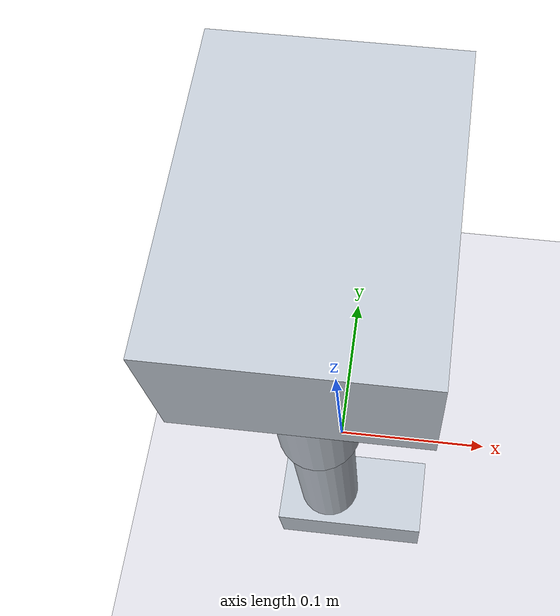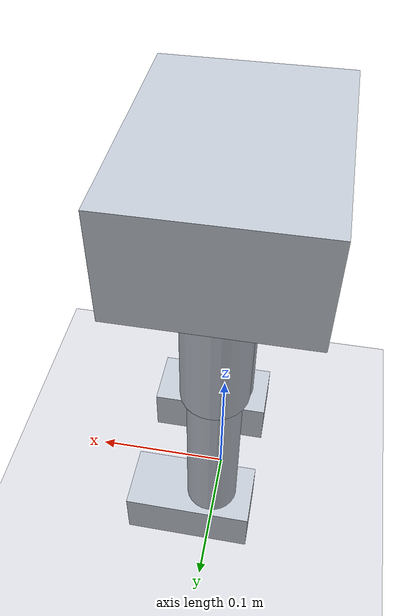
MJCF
<mujoco model="cara_lower_body_dynamic">
  <compiler angle="radian" autolimits="true"/>
  <option gravity="0 0 -9.81" timestep="0.002" integrator="implicitfast"/>

  <visual>
    <headlight diffuse="0.6 0.6 0.6" ambient="0.35 0.35 0.35" specular="0 0 0"/>
    <rgba haze="0.15 0.25 0.35 1"/>
    <global azimuth="130" elevation="-20"/>
  </visual>

  <default>
    <geom contype="0" conaffinity="0" group="2"/>   <!-- link geoms: visual only -->
    <site type="sphere" size="0.006" group="3"/>
  </default>

  <worldbody>
    <light pos="0 0 1.5" dir="0 0 -1" diffuse="0.5 0.5 0.5"/>
    <geom name="floor" type="plane" size="1.0 1.0 0.02" pos="0 0 0" contype="1" conaffinity="1" condim="3" friction="1 0.005 0.0001" rgba="0.85 0.85 0.88 1" group="1"/>

    <body name="pelvis" pos="0 0 0.276801">
      <freejoint name="pelvis_free"/>
      <inertial pos="0 0 -0.01" mass="1.1" diaginertia="0.00279583333 0.00176916667 0.00366666667"/>
      <geom type="box" size="0.06 0.08 0.035" pos="0 0 -0.01" rgba="0.75 0.78 0.82 1"/>
      <site name="pelvis_frame" pos="0 0 0" rgba="0.9 0.5 0.2 1"/>
      <body name="l_thigh" pos="0 0.05 0">
        <joint name="l_hip_yaw" type="hinge" pos="0 0 0" axis="0 0 1" range="-0.79 0.79"/>
        <joint name="l_hip_roll" type="hinge" pos="0 0 0" axis="1 0 0" range="-0.52 0.61"/>
        <joint name="l_hip_pitch" type="hinge" pos="0 0 0" axis="0 1 0" range="-1.75 1.05"/>
        <inertial pos="0 0 -0.066" mass="0.22" diaginertia="0.000264 0.000264 5.324e-05"/>
        <geom type="cylinder" size="0.022 0.06" pos="0 0 -0.066" rgba="0.75 0.78 0.82 1"/>
        <site name="l_thigh_frame" pos="0 0 0" rgba="0.9 0.5 0.2 1"/>
        <body name="l_shin" pos="0 0 -0.12">
          <joint name="l_knee_pitch" type="hinge" pos="0 0 0" axis="0 1 0" range="0 2.36"/>
          <inertial pos="0 0 -0.0696" mass="0.18" diaginertia="0.000216 0.000216 2.916e-05"/>
          <geom type="cylinder" size="0.018 0.06" pos="0 0 -0.0696" rgba="0.75 0.78 0.82 1"/>
          <site name="l_shin_frame" pos="0 0 0" rgba="0.9 0.5 0.2 1"/>
          <body name="l_foot" pos="0 0 -0.12">
            <joint name="l_ankle_pitch" type="hinge" pos="0 0 0" axis="0 1 0" range="-0.87 0.61"/>
            <joint name="l_ankle_roll" type="hinge" pos="0 0 0" axis="1 0 0" range="-0.44 0.44"/>
            <inertial pos="0.015 0 -0.0175" mass="0.08" diaginertia="2.16666667e-05 6.21666667e-05 6.75e-05"/>
            <geom type="box" size="0.045 0.0225 0.0175" pos="0.015 0 -0.0175" rgba="0.75 0.78 0.82 1"/>
            <geom name="l_foot_collision" type="box" size="0.045 0.0225 0.0175" pos="0.015 0 -0.0175" contype="1" conaffinity="1" condim="3" friction="1 0.005 0.0001" rgba="0.9 0.6 0.3 0.35" group="4"/>
            <site name="l_foot_frame" pos="0 0 0" rgba="0.9 0.5 0.2 1"/>
            <site name="l_foot_sole_center" pos="0.015 0 -0.035" rgba="0.2 0.7 0.4 1"/>
          </body>
        </body>
      </body>
      <body name="r_thigh" pos="0 -0.05 0">
        <joint name="r_hip_yaw" type="hinge" pos="0 0 0" axis="0 0 -1" range="-0.79 0.79"/>
        <joint name="r_hip_roll" type="hinge" pos="0 0 0" axis="-1 0 0" range="-0.52 0.61"/>
        <joint name="r_hip_pitch" type="hinge" pos="0 0 0" axis="0 1 0" range="-1.75 1.05"/>
        <inertial pos="0 0 -0.066" mass="0.22" diaginertia="0.000264 0.000264 5.324e-05"/>
        <geom type="cylinder" size="0.022 0.06" pos="0 0 -0.066" rgba="0.75 0.78 0.82 1"/>
        <site name="r_thigh_frame" pos="0 0 0" rgba="0.9 0.5 0.2 1"/>
        <body name="r_shin" pos="0 0 -0.12">
          <joint name="r_knee_pitch" type="hinge" pos="0 0 0" axis="0 1 0" range="0 2.36"/>
          <inertial pos="0 0 -0.0696" mass="0.18" diaginertia="0.000216 0.000216 2.916e-05"/>
          <geom type="cylinder" size="0.018 0.06" pos="0 0 -0.0696" rgba="0.75 0.78 0.82 1"/>
          <site name="r_shin_frame" pos="0 0 0" rgba="0.9 0.5 0.2 1"/>
          <body name="r_foot" pos="0 0 -0.12">
            <joint name="r_ankle_pitch" type="hinge" pos="0 0 0" axis="0 1 0" range="-0.87 0.61"/>
            <joint name="r_ankle_roll" type="hinge" pos="0 0 0" axis="-1 0 0" range="-0.44 0.44"/>
            <inertial pos="0.015 0 -0.0175" mass="0.08" diaginertia="2.16666667e-05 6.21666667e-05 6.75e-05"/>
            <geom type="box" size="0.045 0.0225 0.0175" pos="0.015 0 -0.0175" rgba="0.75 0.78 0.82 1"/>
            <geom name="r_foot_collision" type="box" size="0.045 0.0225 0.0175" pos="0.015 0 -0.0175" contype="1" conaffinity="1" condim="3" friction="1 0.005 0.0001" rgba="0.9 0.6 0.3 0.35" group="4"/>
            <site name="r_foot_frame" pos="0 0 0" rgba="0.9 0.5 0.2 1"/>
            <site name="r_foot_sole_center" pos="0.015 0 -0.035" rgba="0.2 0.7 0.4 1"/>
          </body>
        </body>
      </body>
    </body>
  </worldbody>

  <keyframe>
    <key name="stand_nominal" qpos="0 0 0.276801 1 0 0 0 0 0 -0.1 0.2 -0.1 0 0 0 -0.1 0.2 -0.1 0" ctrl="0 0 -0.1 0.2 -0.1 0 0 0 -0.1 0.2 -0.1 0"/>
    <key name="semi_squat" qpos="0 0 0.242605885 1 0 0 0 0 0 -0.55 1.1 -0.55 0 0 0 -0.55 1.1 -0.55 0" ctrl="0 0 -0.55 1.1 -0.55 0 0 0 -0.55 1.1 -0.55 0"/>
    <key name="stand_wide" qpos="0 0 0.274119522 1 0 0 0 0 0.15 -0.1 0.2 -0.1 -0.15 0 0.15 -0.1 0.2 -0.1 -0.15" ctrl="0 0.15 -0.1 0.2 -0.1 -0.15 0 0.15 -0.1 0.2 -0.1 -0.15"/>
  </keyframe>

  <actuator>
    <position name="l_hip_yaw" joint="l_hip_yaw" kp="30" dampratio="1" ctrlrange="-0.79 0.79" forcerange="-3 3"/>
    <position name="l_hip_roll" joint="l_hip_roll" kp="30" dampratio="1" ctrlrange="-0.52 0.61" forcerange="-3 3"/>
    <position name="l_hip_pitch" joint="l_hip_pitch" kp="45" dampratio="1" ctrlrange="-1.75 1.05" forcerange="-3 3"/>
    <position name="l_knee_pitch" joint="l_knee_pitch" kp="45" dampratio="1" ctrlrange="0 2.36" forcerange="-3 3"/>
    <position name="l_ankle_pitch" joint="l_ankle_pitch" kp="30" dampratio="1" ctrlrange="-0.87 0.61" forcerange="-2 2"/>
    <position name="l_ankle_roll" joint="l_ankle_roll" kp="30" dampratio="1" ctrlrange="-0.44 0.44" forcerange="-2 2"/>
    <position name="r_hip_yaw" joint="r_hip_yaw" kp="30" dampratio="1" ctrlrange="-0.79 0.79" forcerange="-3 3"/>
    <position name="r_hip_roll" joint="r_hip_roll" kp="30" dampratio="1" ctrlrange="-0.52 0.61" forcerange="-3 3"/>
    <position name="r_hip_pitch" joint="r_hip_pitch" kp="45" dampratio="1" ctrlrange="-1.75 1.05" forcerange="-3 3"/>
    <position name="r_knee_pitch" joint="r_knee_pitch" kp="45" dampratio="1" ctrlrange="0 2.36" forcerange="-3 3"/>
    <position name="r_ankle_pitch" joint="r_ankle_pitch" kp="30" dampratio="1" ctrlrange="-0.87 0.61" forcerange="-2 2"/>
    <position name="r_ankle_roll" joint="r_ankle_roll" kp="30" dampratio="1" ctrlrange="-0.44 0.44" forcerange="-2 2"/>
  </actuator>

</mujoco>
